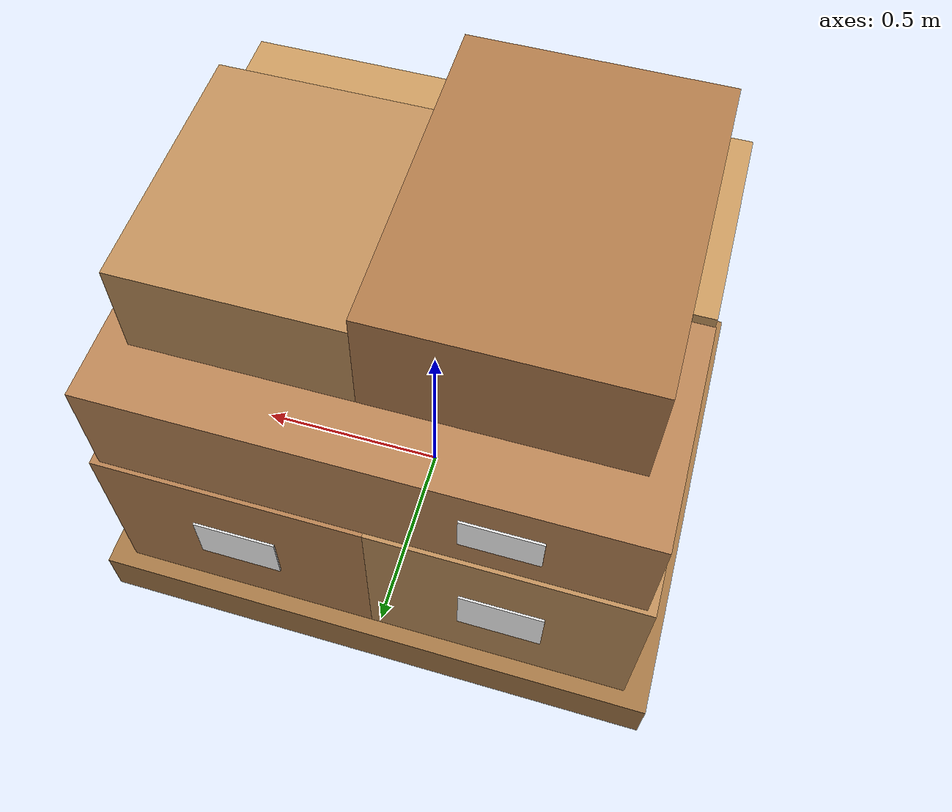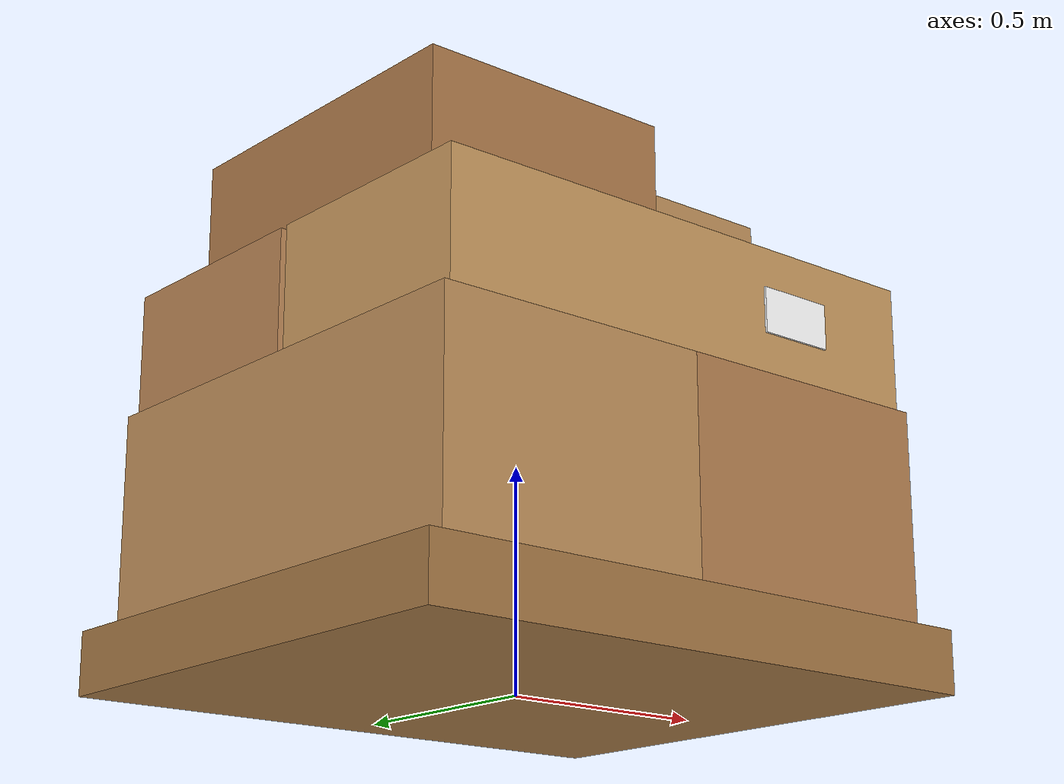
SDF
<?xml version="1.0"?>
<sdf version="1.9">
  <model name="pallet_stack">
    <static>true</static>
    <link name="link">
      <collision name="col">
        <pose>0 0 0.6 0 0 0</pose>
        <geometry><box><size>1.4 1.2 1.2</size></box></geometry>
      </collision>

      <!-- Wooden Pallet Base -->
      <visual name="pallet_base">
        <pose>0 0 0.07 0 0 0</pose>
        <geometry><box><size>1.4 1.2 0.14</size></box></geometry>
        <material><ambient>0.52 0.38 0.22 1</ambient><diffuse>0.62 0.45 0.26 1</diffuse></material>
      </visual>

      <!-- Bottom Tier 1 (2 Cartons) -->
      <visual name="box_b1"><pose>-0.32 0 0.38 0 0 0</pose><geometry><box><size>0.64 1.12 0.48</size></box></geometry><material><ambient>0.62 0.44 0.26 1</ambient><diffuse>0.72 0.54 0.34 1</diffuse></material></visual>
      <visual name="lbl_b1"><pose>-0.32 0.565 0.38 0 0 0</pose><geometry><box><size>0.20 0.005 0.14</size></box></geometry><material><ambient>0.95 0.95 0.95 1</ambient><diffuse>0.98 0.98 0.98 1</diffuse></material></visual>

      <visual name="box_b2"><pose>0.32 0 0.38 0 0 0</pose><geometry><box><size>0.64 1.12 0.48</size></box></geometry><material><ambient>0.58 0.40 0.22 1</ambient><diffuse>0.68 0.48 0.30 1</diffuse></material></visual>
      <visual name="lbl_b2"><pose>0.32 0.565 0.38 0 0 0</pose><geometry><box><size>0.20 0.005 0.14</size></box></geometry><material><ambient>0.95 0.95 0.95 1</ambient><diffuse>0.98 0.98 0.98 1</diffuse></material></visual>

      <!-- Middle Tier 2 (2 Cartons) -->
      <visual name="box_m1"><pose>0 -0.28 0.76 0 0 0</pose><geometry><box><size>1.24 0.54 0.28</size></box></geometry><material><ambient>0.65 0.48 0.28 1</ambient><diffuse>0.76 0.58 0.36 1</diffuse></material></visual>
      <visual name="lbl_m1"><pose>0.3 -0.555 0.76 0 0 0</pose><geometry><box><size>0.18 0.005 0.10</size></box></geometry><material><ambient>0.95 0.95 0.95 1</ambient><diffuse>0.98 0.98 0.98 1</diffuse></material></visual>

      <visual name="box_m2"><pose>0 0.28 0.76 0 0 0</pose><geometry><box><size>1.24 0.54 0.28</size></box></geometry><material><ambient>0.60 0.42 0.24 1</ambient><diffuse>0.70 0.50 0.32 1</diffuse></material></visual>
      <visual name="lbl_m2"><pose>-0.3 0.555 0.76 0 0 0</pose><geometry><box><size>0.18 0.005 0.10</size></box></geometry><material><ambient>0.95 0.95 0.95 1</ambient><diffuse>0.98 0.98 0.98 1</diffuse></material></visual>

      <!-- Top Tier 3 (Stacked Parcel Boxes) -->
      <visual name="box_t1"><pose>-0.25 0 1.04 0 0 0</pose><geometry><box><size>0.60 0.80 0.28</size></box></geometry><material><ambient>0.56 0.38 0.20 1</ambient><diffuse>0.66 0.46 0.28 1</diffuse></material></visual>
      <visual name="box_t2"><pose>0.30 0.1 1.02 0 0 0</pose><geometry><box><size>0.50 0.60 0.24</size></box></geometry><material><ambient>0.62 0.44 0.26 1</ambient><diffuse>0.72 0.54 0.34 1</diffuse></material></visual>
    </link>
  </model>
</sdf>
